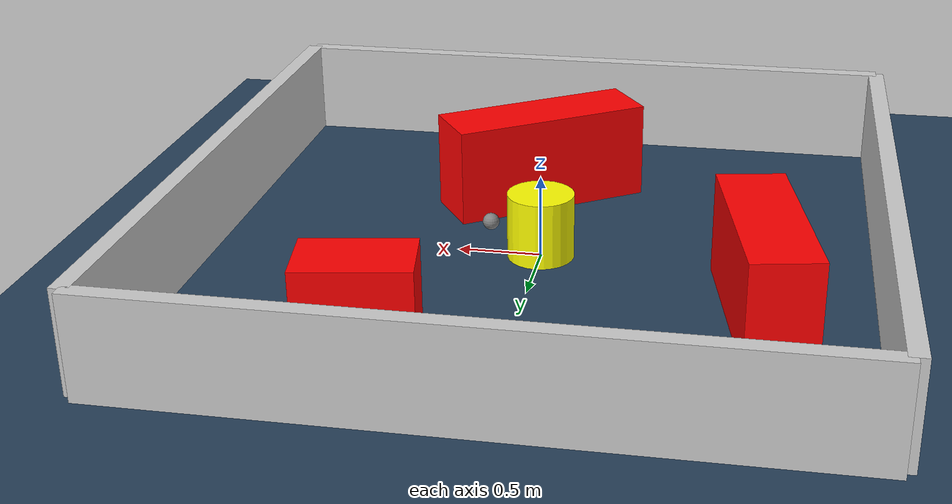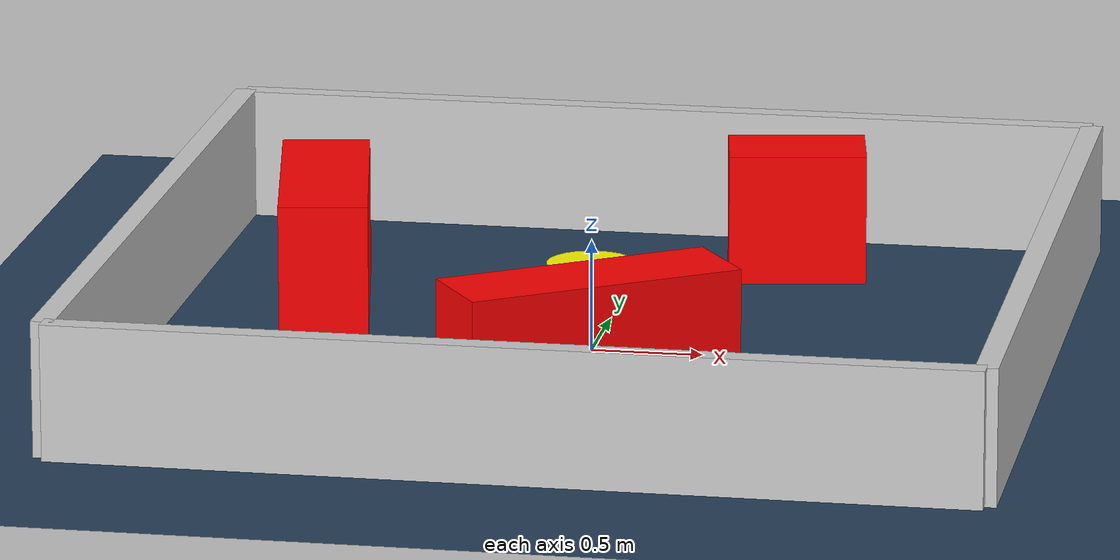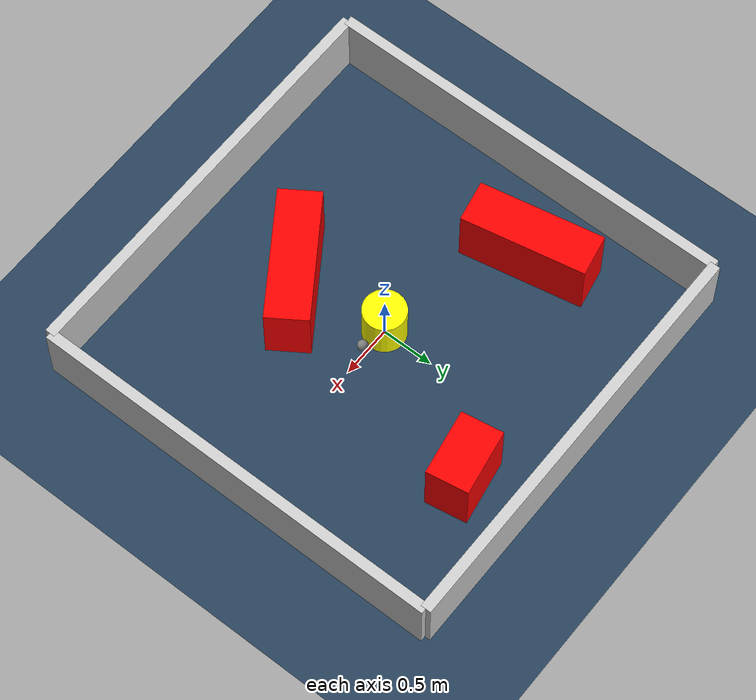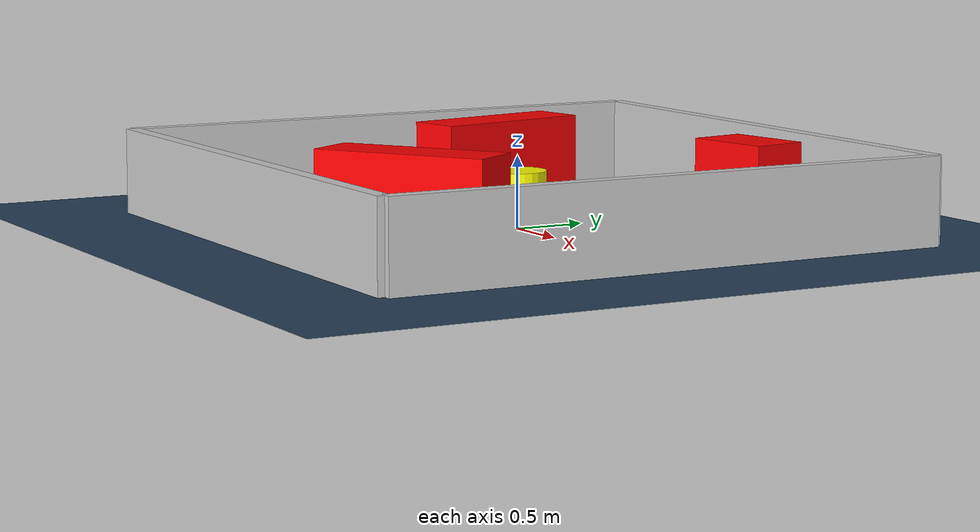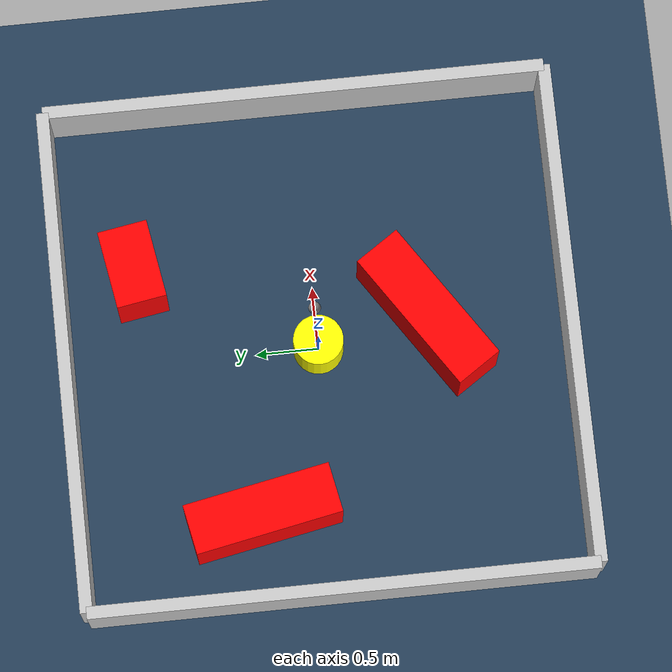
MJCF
<?xml version="1.0" ?>
<mujoco model="generated_environment">
  <option timestep="0.01" integrator="RK4" cone="elliptic"/>
  <default>
    <geom density="1"/>
  </default>
  <asset>
    <texture builtin="gradient" height="3072" rgb1="0.3 0.5 0.7" rgb2="0 0 0" type="skybox" width="512"/>
    <texture builtin="checker" height="300" mark="edge" markrgb="0.8 0.8 0.8" name="groundplane" rgb1="0.2 0.3 0.4" rgb2="0.1 0.2 0.3" type="2d" width="300"/>
    <material name="groundplane" reflectance="0.2" texrepeat="5 5" texture="groundplane" texuniform="true"/>
    <material name="robot" rgba="0.0 1.0 0.0 1"/>
  </asset>
  <worldbody>
    <light dir="0 0 -1" directional="true" pos="0 0 1.5"/>
    <geom condim="4" friction="1.0 0.005 0.001" material="groundplane" name="floor" size="0 0 0.05" type="plane"/>
    <body name="walls">
      <geom name="wall_1" condim="4" pos="-2.0 0.0 0.3" rgba="0.800000011920929 0.800000011920929 0.800000011920929 1.0" size="0.05 2.0 0.3" type="box"/>
      <geom name="wall_2" condim="4" pos="2.0 0.0 0.3" rgba="0.800000011920929 0.800000011920929 0.800000011920929 1.0" size="0.05 2.0 0.3" type="box"/>
      <geom name="wall_3" condim="4" pos="0.0 -2.0 0.3" rgba="0.800000011920929 0.800000011920929 0.800000011920929 1.0" size="2.0 0.05 0.3" type="box"/>
      <geom name="wall_4" condim="4" pos="0.0 2.0 0.3" rgba="0.800000011920929 0.800000011920929 0.800000011920929 1.0" size="2.0 0.05 0.3" type="box"/>
    </body>
    <body name="robot">
      <joint name="joint_x" type="slide" pos="0 0 0" axis="1 0 0"/>
      <joint name="joint_y" type="slide" pos="0 0 0" axis="0 1 0"/>
      <geom name="robot" type="sphere" pos="0.3 0.0 0.2" size="0.05" mass="5." friction="1.0 0.005 0.0001" condim="4" rgba="0.5 0.5 0.5 1.0"/>
      <site name="sensor_ball"/>
    </body>
    <body name="obstacle_movable_1">
      <geom name="obstacle_movable_1" condim="4" pos="0.0 0.0 0.2" euler="0 0 0.0" friction="1.0 0.005 0.001" rgba="1.0 1.0 0.0 1.0" size="0.2 0.2 0.0" type="cylinder" mass="0.1"/>
      <joint type="free"/>
    </body>
    <body name="obstacle_2_static">
      <geom name="obstacle_2_static" condim="4" pos="0.141319095335662 -0.8787310902590575 0.3" euler="0 0 33.819114052500815" friction="1.0 0.005 0.001" rgba="1 0 0 1" size="0.6301615027415803 0.2 0.3" type="box"/>
    </body>
    <body name="obstacle_3_static">
      <geom name="obstacle_3_static" condim="4" pos="0.7112041275591967 1.4020984548662645 0.3" euler="0 0 189.52770744389454" friction="1.0 0.005 0.001" rgba="1 0 0 1" size="0.3132013529421711 0.2 0.3" type="box"/>
    </body>
    <body name="obstacle_4_static">
      <geom name="obstacle_4_static" condim="4" pos="-1.3228784801552818 0.5656163750523435 0.3" euler="0 0 281.00949617209835" friction="1.0 0.005 0.001" rgba="1 0 0 1" size="0.5912315751891096 0.2 0.3" type="box"/>
    </body>
  </worldbody>
  <actuator>
    <motor name="actuator_x" joint="joint_x" gear="1" ctrlrange="-1 1"/>
    <motor name="actuator_y" joint="joint_y" gear="1" ctrlrange="-1 1"/>
  </actuator>
</mujoco>
